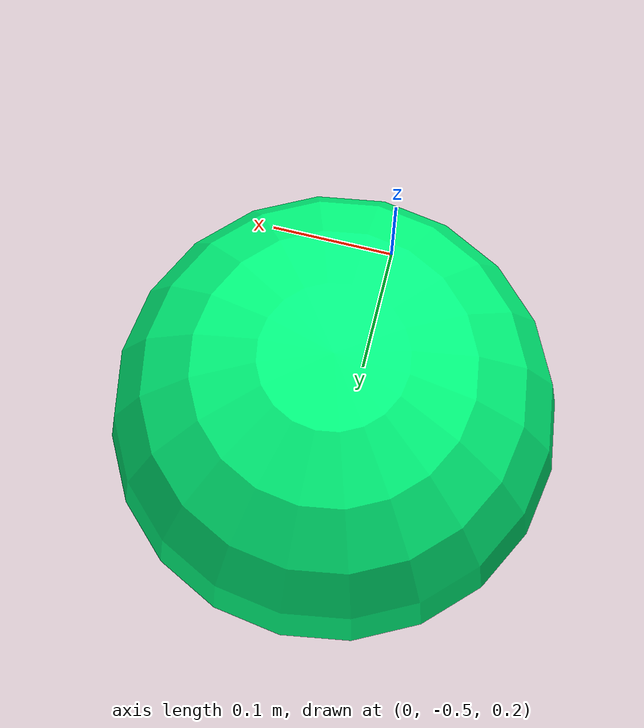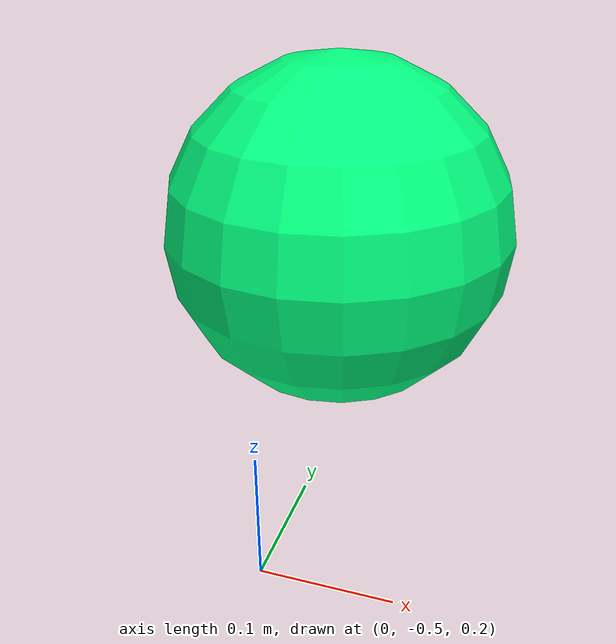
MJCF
<mujoco model="target_Sphere">
    <worldbody>
        <body name="target_Sphere" pos="0.0 0.0 0.0" quat="1 0 0 0">
        <geom name="target_Sphere" pos="0 -0.3 0.4" size="0.15" rgba="0 1 0.5 1.0" type="sphere" mass="0.01" contype="0" conaffinity="0" />
        </body>
    </worldbody>
</mujoco>
